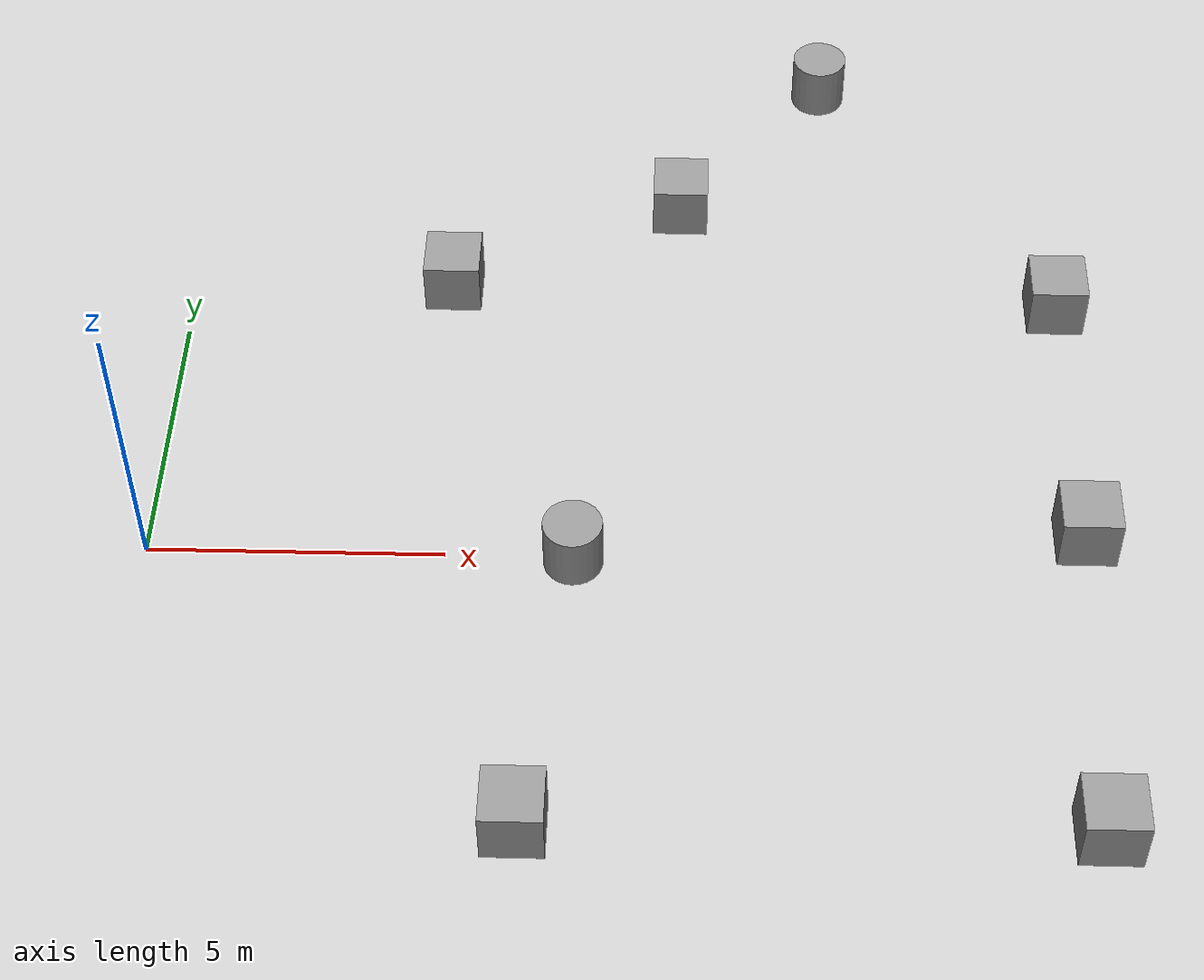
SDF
<sdf version="1.7">
 <world name="default">
  <model name="ground_plane">
   <static>1</static>
   <link name="link">
    <collision name="collision">
     <geometry><plane><normal>0 0 1</normal><size>100 100</size></plane></geometry>
     <surface><friction><ode><mu>100</mu><mu2>50</mu2></ode></friction></surface>
    </collision>
    <visual name="visual">
     <cast_shadows>0</cast_shadows>
     <geometry><plane><normal>0 0 1</normal><size>100 100</size></plane></geometry>
     <material>
      <script><uri>file://media/materials/scripts/gazebo.material</uri><name>Gazebo/Grey</name></script>
     </material>
    </visual>
   </link>
  </model>
  <model name="unit_box_0">
   <pose>8.81696 8.28383 0.5 0 -0 -0.00717</pose>
   <link name="link">
    <inertial>
     <mass>1</mass>
     <inertia>
      <ixx>0.166667</ixx>
      <ixy>0</ixy>
      <ixz>0</ixz>
      <iyy>0.166667</iyy>
      <iyz>0</iyz>
      <izz>0.166667</izz>
     </inertia>
    </inertial>
    <collision name="collision"><geometry><box><size>1 1 1</size></box></geometry></collision>
    <visual name="visual">
     <geometry><box><size>1 1 1</size></box></geometry>
     <material>
      <script><name>Gazebo/Grey</name><uri>file://media/materials/scripts/gazebo.material</uri></script>
     </material>
    </visual>
   </link>
  </model>
  <model name="unit_cylinder">
   <pose>11.4718 11.6954 0.499998 3e-06 -3e-06 0</pose>
   <link name="link">
    <inertial>
     <mass>1</mass>
     <inertia><ixx>0.145833</ixx><ixy>0</ixy><ixz>0</ixz><iyy>0.145833</iyy><iyz>0</iyz><izz>0.125</izz></inertia>
    </inertial>
    <collision name="collision">
     <geometry><cylinder><radius>0.5</radius><length>1</length></cylinder></geometry>
    </collision>
    <visual name="visual">
     <geometry><cylinder><radius>0.5</radius><length>1</length></cylinder></geometry>
     <material>
      <script><name>Gazebo/Grey</name><uri>file://media/materials/scripts/gazebo.material</uri></script>
     </material>
    </visual>
   </link>
  </model>
  <model name="unit_box_1">
   <pose>15.6078 5.86721 0.499995 0 1e-05 0</pose>
   <link name="link">
    <inertial>
     <mass>1</mass>
     <inertia>
      <ixx>0.166667</ixx>
      <ixy>0</ixy>
      <ixz>0</ixz>
      <iyy>0.166667</iyy>
      <iyz>0</iyz>
      <izz>0.166667</izz>
     </inertia>
    </inertial>
    <collision name="collision"><geometry><box><size>1 1 1</size></box></geometry></collision>
    <visual name="visual">
     <geometry><box><size>1 1 1</size></box></geometry>
     <material>
      <script><name>Gazebo/Grey</name><uri>file://media/materials/scripts/gazebo.material</uri></script>
     </material>
    </visual>
   </link>
  </model>
  <model name="unit_box_2">
   <pose>15.6829 0.565707 0.499995 -1e-05 -0 -0</pose>
   <link name="link">
    <inertial>
     <mass>1</mass>
     <inertia>
      <ixx>0.166667</ixx>
      <ixy>0</ixy>
      <ixz>0</ixz>
      <iyy>0.166667</iyy>
      <iyz>0</iyz>
      <izz>0.166667</izz>
     </inertia>
    </inertial>
    <collision name="collision"><geometry><box><size>1 1 1</size></box></geometry></collision>
    <visual name="visual">
     <geometry><box><size>1 1 1</size></box></geometry>
     <material>
      <script><name>Gazebo/Grey</name><uri>file://media/materials/scripts/gazebo.material</uri></script>
     </material>
    </visual>
   </link>
  </model>
  <model name="unit_box_3">
   <pose>15.495 -5.18734 0.499995 0 1e-05 0</pose>
   <link name="link">
    <inertial>
     <mass>1</mass>
     <inertia>
      <ixx>0.166667</ixx>
      <ixy>0</ixy>
      <ixz>0</ixz>
      <iyy>0.166667</iyy>
      <iyz>0</iyz>
      <izz>0.166667</izz>
     </inertia>
    </inertial>
    <collision name="collision"><geometry><box><size>1 1 1</size></box></geometry></collision>
    <visual name="visual">
     <geometry><box><size>1 1 1</size></box></geometry>
     <material>
      <script><name>Gazebo/Grey</name><uri>file://media/materials/scripts/gazebo.material</uri></script>
     </material>
    </visual>
   </link>
  </model>
  <model name="unit_box_5">
   <pose>6.45554 -5.28091 0.499995 0 1e-05 0</pose>
   <link name="link">
    <inertial>
     <mass>1</mass>
     <inertia>
      <ixx>0.166667</ixx>
      <ixy>0</ixy>
      <ixz>0</ixz>
      <iyy>0.166667</iyy>
      <iyz>0</iyz>
      <izz>0.166667</izz>
     </inertia>
    </inertial>
    <collision name="collision"><geometry><box><size>1 1 1</size></box></geometry></collision>
    <visual name="visual">
     <geometry><box><size>1 1 1</size></box></geometry>
     <material>
      <script><name>Gazebo/Grey</name><uri>file://media/materials/scripts/gazebo.material</uri></script>
     </material>
    </visual>
   </link>
  </model>
  <model name="unit_box_6">
   <pose>4.71953 6.19791 0.499995 -1e-05 -0 -0</pose>
   <link name="link">
    <inertial>
     <mass>1</mass>
     <inertia>
      <ixx>0.166667</ixx>
      <ixy>0</ixy>
      <ixz>0</ixz>
      <iyy>0.166667</iyy>
      <iyz>0</iyz>
      <izz>0.166667</izz>
     </inertia>
    </inertial>
    <collision name="collision"><geometry><box><size>1 1 1</size></box></geometry></collision>
    <visual name="visual">
     <geometry><box><size>1 1 1</size></box></geometry>
     <material>
      <script><name>Gazebo/Grey</name><uri>file://media/materials/scripts/gazebo.material</uri></script>
     </material>
    </visual>
   </link>
  </model>
  <model name="unit_cylinder_2">
   <pose>7.14616 -0.068789 0.499997 3e-06 4e-06 -0</pose>
   <link name="link">
    <inertial>
     <mass>1</mass>
     <inertia><ixx>0.145833</ixx><ixy>0</ixy><ixz>0</ixz><iyy>0.145833</iyy><iyz>0</iyz><izz>0.125</izz></inertia>
    </inertial>
    <collision name="collision">
     <geometry><cylinder><radius>0.5</radius><length>1</length></cylinder></geometry>
    </collision>
    <visual name="visual">
     <geometry><cylinder><radius>0.5</radius><length>1</length></cylinder></geometry>
     <material>
      <script><name>Gazebo/Grey</name><uri>file://media/materials/scripts/gazebo.material</uri></script>
     </material>
    </visual>
   </link>
  </model>
 </world>
</sdf>
